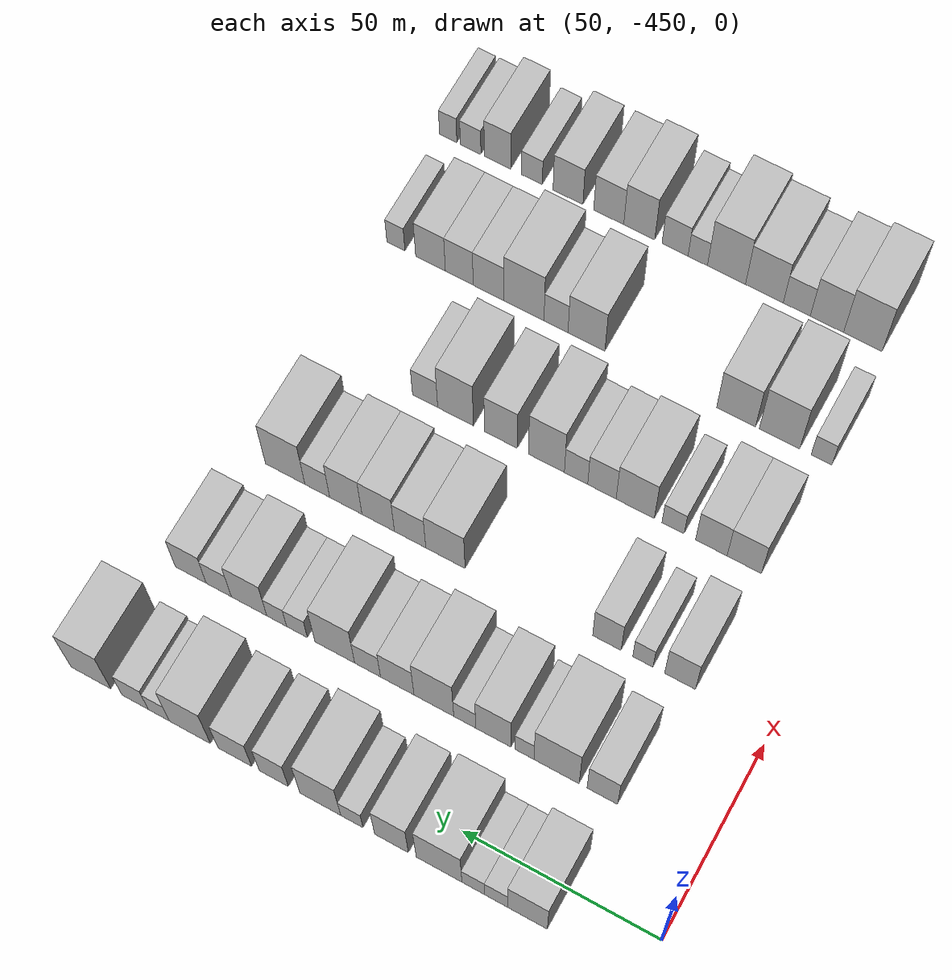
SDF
<sdf version="1.6">
 <world name="default">
  <model name="building_13">
   <static>1</static>
   <pose>50.0000 -421.9103 0 0.000000 0.000000 0.000000</pose>
   <link name="link">
    <pose>0 0 10.50 0 0 0</pose>
    <collision name="collision"><geometry><box><size>20.0000 9.9647 21.0000</size></box></geometry></collision>
    <visual name="visual">
     <cast_shadows>0</cast_shadows>
     <geometry><box><size>20.0000 9.9647 21.0000</size></box></geometry>
     <material>
      <script>
       <uri>model://HANNAS_wall/materials/scripts</uri>
       <uri>model://HANNAS_wall/materials/textures</uri>
       <name>vrc/HANNAS_wall</name>
      </script>
     </material>
    </visual>
   </link>
  </model>
  <model name="building_14">
   <static>1</static>
   <pose>50.0000 -414.0437 0 0.000000 0.000000 0.000000</pose>
   <link name="link">
    <pose>0 0 6.00 0 0 0</pose>
    <collision name="collision"><geometry><box><size>20.0000 5.7685 12.0000</size></box></geometry></collision>
    <visual name="visual">
     <cast_shadows>0</cast_shadows>
     <geometry><box><size>20.0000 5.7685 12.0000</size></box></geometry>
     <material>
      <script>
       <uri>model://HANNAS_wall/materials/scripts</uri>
       <uri>model://HANNAS_wall/materials/textures</uri>
       <name>vrc/HANNAS_wall</name>
      </script>
     </material>
    </visual>
   </link>
  </model>
  <model name="building_15">
   <static>1</static>
   <pose>50.0000 -408.3060 0 0.000000 0.000000 0.000000</pose>
   <link name="link">
    <pose>0 0 6.00 0 0 0</pose>
    <collision name="collision"><geometry><box><size>20.0000 5.7069 12.0000</size></box></geometry></collision>
    <visual name="visual">
     <cast_shadows>0</cast_shadows>
     <geometry><box><size>20.0000 5.7069 12.0000</size></box></geometry>
     <material>
      <script>
       <uri>model://HANNAS_wall/materials/scripts</uri>
       <uri>model://HANNAS_wall/materials/textures</uri>
       <name>vrc/HANNAS_wall</name>
      </script>
     </material>
    </visual>
   </link>
  </model>
  <model name="building_16">
   <static>1</static>
   <pose>50.0000 -399.6602 0 0.000000 0.000000 0.000000</pose>
   <link name="link">
    <pose>0 0 12.00 0 0 0</pose>
    <collision name="collision"><geometry><box><size>20.0000 11.5849 24.0000</size></box></geometry></collision>
    <visual name="visual">
     <cast_shadows>0</cast_shadows>
     <geometry><box><size>20.0000 11.5849 24.0000</size></box></geometry>
     <material>
      <script>
       <uri>model://HANNAS_wall/materials/scripts</uri>
       <uri>model://HANNAS_wall/materials/textures</uri>
       <name>vrc/HANNAS_wall</name>
      </script>
     </material>
    </visual>
   </link>
  </model>
  <model name="building_17">
   <static>1</static>
   <pose>50.0000 -387.5514 0 0.000000 0.000000 0.000000</pose>
   <link name="link">
    <pose>0 0 10.50 0 0 0</pose>
    <collision name="collision"><geometry><box><size>20.0000 8.6327 21.0000</size></box></geometry></collision>
    <visual name="visual">
     <cast_shadows>0</cast_shadows>
     <geometry><box><size>20.0000 8.6327 21.0000</size></box></geometry>
     <material>
      <script>
       <uri>model://HANNAS_wall/materials/scripts</uri>
       <uri>model://HANNAS_wall/materials/textures</uri>
       <name>vrc/HANNAS_wall</name>
      </script>
     </material>
    </visual>
   </link>
  </model>
  <model name="building_18">
   <static>1</static>
   <pose>50.0000 -377.3705 0 0.000000 0.000000 0.000000</pose>
   <link name="link">
    <pose>0 0 6.00 0 0 0</pose>
    <collision name="collision"><geometry><box><size>20.0000 5.7292 12.0000</size></box></geometry></collision>
    <visual name="visual">
     <cast_shadows>0</cast_shadows>
     <geometry><box><size>20.0000 5.7292 12.0000</size></box></geometry>
     <material>
      <script>
       <uri>model://HANNAS_wall/materials/scripts</uri>
       <uri>model://HANNAS_wall/materials/textures</uri>
       <name>vrc/HANNAS_wall</name>
      </script>
     </material>
    </visual>
   </link>
  </model>
  <model name="building_19">
   <static>1</static>
   <pose>50.0000 -369.2263 0 0.000000 0.000000 0.000000</pose>
   <link name="link">
    <pose>0 0 12.00 0 0 0</pose>
    <collision name="collision"><geometry><box><size>20.0000 10.5591 24.0000</size></box></geometry></collision>
    <visual name="visual">
     <cast_shadows>0</cast_shadows>
     <geometry><box><size>20.0000 10.5591 24.0000</size></box></geometry>
     <material>
      <script>
       <uri>model://HANNAS_wall/materials/scripts</uri>
       <uri>model://HANNAS_wall/materials/textures</uri>
       <name>vrc/HANNAS_wall</name>
      </script>
     </material>
    </visual>
   </link>
  </model>
  <model name="building_20">
   <static>1</static>
   <pose>50.0000 -357.1500 0 0.000000 0.000000 0.000000</pose>
   <link name="link">
    <pose>0 0 9.00 0 0 0</pose>
    <collision name="collision"><geometry><box><size>20.0000 7.5935 18.0000</size></box></geometry></collision>
    <visual name="visual">
     <cast_shadows>0</cast_shadows>
     <geometry><box><size>20.0000 7.5935 18.0000</size></box></geometry>
     <material>
      <script>
       <uri>model://HANNAS_wall/materials/scripts</uri>
       <uri>model://HANNAS_wall/materials/textures</uri>
       <name>vrc/HANNAS_wall</name>
      </script>
     </material>
    </visual>
   </link>
  </model>
  <model name="building_21">
   <static>1</static>
   <pose>50.0000 -346.9316 0 0.000000 0.000000 0.000000</pose>
   <link name="link">
    <pose>0 0 9.00 0 0 0</pose>
    <collision name="collision"><geometry><box><size>20.0000 8.8433 18.0000</size></box></geometry></collision>
    <visual name="visual">
     <cast_shadows>0</cast_shadows>
     <geometry><box><size>20.0000 8.8433 18.0000</size></box></geometry>
     <material>
      <script>
       <uri>model://HANNAS_wall/materials/scripts</uri>
       <uri>model://HANNAS_wall/materials/textures</uri>
       <name>vrc/HANNAS_wall</name>
      </script>
     </material>
    </visual>
   </link>
  </model>
  <model name="building_22">
   <static>1</static>
   <pose>50.0000 -335.1020 0 0.000000 0.000000 0.000000</pose>
   <link name="link">
    <pose>0 0 12.00 0 0 0</pose>
    <collision name="collision"><geometry><box><size>20.0000 10.8159 24.0000</size></box></geometry></collision>
    <visual name="visual">
     <cast_shadows>0</cast_shadows>
     <geometry><box><size>20.0000 10.8159 24.0000</size></box></geometry>
     <material>
      <script>
       <uri>model://HANNAS_wall/materials/scripts</uri>
       <uri>model://HANNAS_wall/materials/textures</uri>
       <name>vrc/HANNAS_wall</name>
      </script>
     </material>
    </visual>
   </link>
  </model>
  <model name="building_23">
   <static>1</static>
   <pose>50.0000 -326.8852 0 0.000000 0.000000 0.000000</pose>
   <link name="link">
    <pose>0 0 6.00 0 0 0</pose>
    <collision name="collision"><geometry><box><size>20.0000 5.6176 12.0000</size></box></geometry></collision>
    <visual name="visual">
     <cast_shadows>0</cast_shadows>
     <geometry><box><size>20.0000 5.6176 12.0000</size></box></geometry>
     <material>
      <script>
       <uri>model://HANNAS_wall/materials/scripts</uri>
       <uri>model://HANNAS_wall/materials/textures</uri>
       <name>vrc/HANNAS_wall</name>
      </script>
     </material>
    </visual>
   </link>
  </model>
  <model name="building_24">
   <static>1</static>
   <pose>50.0000 -320.5650 0 0.000000 0.000000 0.000000</pose>
   <link name="link">
    <pose>0 0 7.50 0 0 0</pose>
    <collision name="collision"><geometry><box><size>20.0000 7.0227 15.0000</size></box></geometry></collision>
    <visual name="visual">
     <cast_shadows>0</cast_shadows>
     <geometry><box><size>20.0000 7.0227 15.0000</size></box></geometry>
     <material>
      <script>
       <uri>model://HANNAS_wall/materials/scripts</uri>
       <uri>model://HANNAS_wall/materials/textures</uri>
       <name>vrc/HANNAS_wall</name>
      </script>
     </material>
    </visual>
   </link>
  </model>
  <model name="building_25">
   <static>1</static>
   <pose>50.0000 -308.7052 0 0.000000 0.000000 0.000000</pose>
   <link name="link">
    <pose>0 0 12.00 0 0 0</pose>
    <collision name="collision"><geometry><box><size>20.0000 10.6969 24.0000</size></box></geometry></collision>
    <visual name="visual">
     <cast_shadows>0</cast_shadows>
     <geometry><box><size>20.0000 10.6969 24.0000</size></box></geometry>
     <material>
      <script>
       <uri>model://HANNAS_wall/materials/scripts</uri>
       <uri>model://HANNAS_wall/materials/textures</uri>
       <name>vrc/HANNAS_wall</name>
      </script>
     </material>
    </visual>
   </link>
  </model>
  <model name="building_134">
   <static>1</static>
   <pose>82.0000 -423.4701 0 0.000000 0.000000 0.000000</pose>
   <link name="link">
    <pose>0 0 9.00 0 0 0</pose>
    <collision name="collision"><geometry><box><size>20.0000 7.7353 18.0000</size></box></geometry></collision>
    <visual name="visual">
     <cast_shadows>0</cast_shadows>
     <geometry><box><size>20.0000 7.7353 18.0000</size></box></geometry>
     <material>
      <script>
       <uri>model://HANNAS_wall/materials/scripts</uri>
       <uri>model://HANNAS_wall/materials/textures</uri>
       <name>vrc/HANNAS_wall</name>
      </script>
     </material>
    </visual>
   </link>
  </model>
  <model name="building_135">
   <static>1</static>
   <pose>82.0000 -411.8391 0 0.000000 0.000000 0.000000</pose>
   <link name="link">
    <pose>0 0 12.00 0 0 0</pose>
    <collision name="collision"><geometry><box><size>20.0000 11.5268 24.0000</size></box></geometry></collision>
    <visual name="visual">
     <cast_shadows>0</cast_shadows>
     <geometry><box><size>20.0000 11.5268 24.0000</size></box></geometry>
     <material>
      <script>
       <uri>model://HANNAS_wall/materials/scripts</uri>
       <uri>model://HANNAS_wall/materials/textures</uri>
       <name>vrc/HANNAS_wall</name>
      </script>
     </material>
    </visual>
   </link>
  </model>
  <model name="building_136">
   <static>1</static>
   <pose>82.0000 -403.6393 0 0.000000 0.000000 0.000000</pose>
   <link name="link">
    <pose>0 0 6.00 0 0 0</pose>
    <collision name="collision"><geometry><box><size>20.0000 4.8726 12.0000</size></box></geometry></collision>
    <visual name="visual">
     <cast_shadows>0</cast_shadows>
     <geometry><box><size>20.0000 4.8726 12.0000</size></box></geometry>
     <material>
      <script>
       <uri>model://HANNAS_wall/materials/scripts</uri>
       <uri>model://HANNAS_wall/materials/textures</uri>
       <name>vrc/HANNAS_wall</name>
      </script>
     </material>
    </visual>
   </link>
  </model>
  <model name="building_137">
   <static>1</static>
   <pose>82.0000 -395.6649 0 0.000000 0.000000 0.000000</pose>
   <link name="link">
    <pose>0 0 10.50 0 0 0</pose>
    <collision name="collision"><geometry><box><size>20.0000 9.0762 21.0000</size></box></geometry></collision>
    <visual name="visual">
     <cast_shadows>0</cast_shadows>
     <geometry><box><size>20.0000 9.0762 21.0000</size></box></geometry>
     <material>
      <script>
       <uri>model://HANNAS_wall/materials/scripts</uri>
       <uri>model://HANNAS_wall/materials/textures</uri>
       <name>vrc/HANNAS_wall</name>
      </script>
     </material>
    </visual>
   </link>
  </model>
  <model name="building_138">
   <static>1</static>
   <pose>82.0000 -388.2661 0 0.000000 0.000000 0.000000</pose>
   <link name="link">
    <pose>0 0 6.00 0 0 0</pose>
    <collision name="collision"><geometry><box><size>20.0000 5.7216 12.0000</size></box></geometry></collision>
    <visual name="visual">
     <cast_shadows>0</cast_shadows>
     <geometry><box><size>20.0000 5.7216 12.0000</size></box></geometry>
     <material>
      <script>
       <uri>model://HANNAS_wall/materials/scripts</uri>
       <uri>model://HANNAS_wall/materials/textures</uri>
       <name>vrc/HANNAS_wall</name>
      </script>
     </material>
    </visual>
   </link>
  </model>
  <model name="building_139">
   <static>1</static>
   <pose>82.0000 -380.2306 0 0.000000 0.000000 0.000000</pose>
   <link name="link">
    <pose>0 0 12.00 0 0 0</pose>
    <collision name="collision"><geometry><box><size>20.0000 10.3494 24.0000</size></box></geometry></collision>
    <visual name="visual">
     <cast_shadows>0</cast_shadows>
     <geometry><box><size>20.0000 10.3494 24.0000</size></box></geometry>
     <material>
      <script>
       <uri>model://HANNAS_wall/materials/scripts</uri>
       <uri>model://HANNAS_wall/materials/textures</uri>
       <name>vrc/HANNAS_wall</name>
      </script>
     </material>
    </visual>
   </link>
  </model>
  <model name="building_140">
   <static>1</static>
   <pose>82.0000 -370.6792 0 0.000000 0.000000 0.000000</pose>
   <link name="link">
    <pose>0 0 9.00 0 0 0</pose>
    <collision name="collision"><geometry><box><size>20.0000 8.7533 18.0000</size></box></geometry></collision>
    <visual name="visual">
     <cast_shadows>0</cast_shadows>
     <geometry><box><size>20.0000 8.7533 18.0000</size></box></geometry>
     <material>
      <script>
       <uri>model://HANNAS_wall/materials/scripts</uri>
       <uri>model://HANNAS_wall/materials/textures</uri>
       <name>vrc/HANNAS_wall</name>
      </script>
     </material>
    </visual>
   </link>
  </model>
  <model name="building_141">
   <static>1</static>
   <pose>82.0000 -362.8977 0 0.000000 0.000000 0.000000</pose>
   <link name="link">
    <pose>0 0 7.50 0 0 0</pose>
    <collision name="collision"><geometry><box><size>20.0000 6.8097 15.0000</size></box></geometry></collision>
    <visual name="visual">
     <cast_shadows>0</cast_shadows>
     <geometry><box><size>20.0000 6.8097 15.0000</size></box></geometry>
     <material>
      <script>
       <uri>model://HANNAS_wall/materials/scripts</uri>
       <uri>model://HANNAS_wall/materials/textures</uri>
       <name>vrc/HANNAS_wall</name>
      </script>
     </material>
    </visual>
   </link>
  </model>
  <model name="building_142">
   <static>1</static>
   <pose>82.0000 -354.2395 0 0.000000 0.000000 0.000000</pose>
   <link name="link">
    <pose>0 0 12.00 0 0 0</pose>
    <collision name="collision"><geometry><box><size>20.0000 10.5068 24.0000</size></box></geometry></collision>
    <visual name="visual">
     <cast_shadows>0</cast_shadows>
     <geometry><box><size>20.0000 10.5068 24.0000</size></box></geometry>
     <material>
      <script>
       <uri>model://HANNAS_wall/materials/scripts</uri>
       <uri>model://HANNAS_wall/materials/textures</uri>
       <name>vrc/HANNAS_wall</name>
      </script>
     </material>
    </visual>
   </link>
  </model>
  <model name="building_143">
   <static>1</static>
   <pose>82.0000 -344.2199 0 0.000000 0.000000 0.000000</pose>
   <link name="link">
    <pose>0 0 6.00 0 0 0</pose>
    <collision name="collision"><geometry><box><size>20.0000 5.5324 12.0000</size></box></geometry></collision>
    <visual name="visual">
     <cast_shadows>0</cast_shadows>
     <geometry><box><size>20.0000 5.5324 12.0000</size></box></geometry>
     <material>
      <script>
       <uri>model://HANNAS_wall/materials/scripts</uri>
       <uri>model://HANNAS_wall/materials/textures</uri>
       <name>vrc/HANNAS_wall</name>
      </script>
     </material>
    </visual>
   </link>
  </model>
  <model name="building_144">
   <static>1</static>
   <pose>82.0000 -338.8040 0 0.000000 0.000000 0.000000</pose>
   <link name="link">
    <pose>0 0 6.00 0 0 0</pose>
    <collision name="collision"><geometry><box><size>20.0000 5.2995 12.0000</size></box></geometry></collision>
    <visual name="visual">
     <cast_shadows>0</cast_shadows>
     <geometry><box><size>20.0000 5.2995 12.0000</size></box></geometry>
     <material>
      <script>
       <uri>model://HANNAS_wall/materials/scripts</uri>
       <uri>model://HANNAS_wall/materials/textures</uri>
       <name>vrc/HANNAS_wall</name>
      </script>
     </material>
    </visual>
   </link>
  </model>
  <model name="building_145">
   <static>1</static>
   <pose>82.0000 -331.4019 0 0.000000 0.000000 0.000000</pose>
   <link name="link">
    <pose>0 0 10.50 0 0 0</pose>
    <collision name="collision"><geometry><box><size>20.0000 9.5048 21.0000</size></box></geometry></collision>
    <visual name="visual">
     <cast_shadows>0</cast_shadows>
     <geometry><box><size>20.0000 9.5048 21.0000</size></box></geometry>
     <material>
      <script>
       <uri>model://HANNAS_wall/materials/scripts</uri>
       <uri>model://HANNAS_wall/materials/textures</uri>
       <name>vrc/HANNAS_wall</name>
      </script>
     </material>
    </visual>
   </link>
  </model>
  <model name="building_146">
   <static>1</static>
   <pose>82.0000 -323.2668 0 0.000000 0.000000 0.000000</pose>
   <link name="link">
    <pose>0 0 7.50 0 0 0</pose>
    <collision name="collision"><geometry><box><size>20.0000 6.7654 15.0000</size></box></geometry></collision>
    <visual name="visual">
     <cast_shadows>0</cast_shadows>
     <geometry><box><size>20.0000 6.7654 15.0000</size></box></geometry>
     <material>
      <script>
       <uri>model://HANNAS_wall/materials/scripts</uri>
       <uri>model://HANNAS_wall/materials/textures</uri>
       <name>vrc/HANNAS_wall</name>
      </script>
     </material>
    </visual>
   </link>
  </model>
  <model name="building_147">
   <static>1</static>
   <pose>82.0000 -315.7030 0 0.000000 0.000000 0.000000</pose>
   <link name="link">
    <pose>0 0 9.00 0 0 0</pose>
    <collision name="collision"><geometry><box><size>20.0000 8.3622 18.0000</size></box></geometry></collision>
    <visual name="visual">
     <cast_shadows>0</cast_shadows>
     <geometry><box><size>20.0000 8.3622 18.0000</size></box></geometry>
     <material>
      <script>
       <uri>model://HANNAS_wall/materials/scripts</uri>
       <uri>model://HANNAS_wall/materials/textures</uri>
       <name>vrc/HANNAS_wall</name>
      </script>
     </material>
    </visual>
   </link>
  </model>
  <model name="building_253">
   <static>1</static>
   <pose>114.0000 -426.4577 0 0.000000 0.000000 0.000000</pose>
   <link name="link">
    <pose>0 0 9.00 0 0 0</pose>
    <collision name="collision"><geometry><box><size>20.0000 7.8950 18.0000</size></box></geometry></collision>
    <visual name="visual">
     <cast_shadows>0</cast_shadows>
     <geometry><box><size>20.0000 7.8950 18.0000</size></box></geometry>
     <material>
      <script>
       <uri>model://HANNAS_wall/materials/scripts</uri>
       <uri>model://HANNAS_wall/materials/textures</uri>
       <name>vrc/HANNAS_wall</name>
      </script>
     </material>
    </visual>
   </link>
  </model>
  <model name="building_254">
   <static>1</static>
   <pose>114.0000 -416.8995 0 0.000000 0.000000 0.000000</pose>
   <link name="link">
    <pose>0 0 6.00 0 0 0</pose>
    <collision name="collision"><geometry><box><size>20.0000 5.2213 12.0000</size></box></geometry></collision>
    <visual name="visual">
     <cast_shadows>0</cast_shadows>
     <geometry><box><size>20.0000 5.2213 12.0000</size></box></geometry>
     <material>
      <script>
       <uri>model://HANNAS_wall/materials/scripts</uri>
       <uri>model://HANNAS_wall/materials/textures</uri>
       <name>vrc/HANNAS_wall</name>
      </script>
     </material>
    </visual>
   </link>
  </model>
  <model name="building_255">
   <static>1</static>
   <pose>114.0000 -407.6036 0 0.000000 0.000000 0.000000</pose>
   <link name="link">
    <pose>0 0 9.00 0 0 0</pose>
    <collision name="collision"><geometry><box><size>20.0000 7.3705 18.0000</size></box></geometry></collision>
    <visual name="visual">
     <cast_shadows>0</cast_shadows>
     <geometry><box><size>20.0000 7.3705 18.0000</size></box></geometry>
     <material>
      <script>
       <uri>model://HANNAS_wall/materials/scripts</uri>
       <uri>model://HANNAS_wall/materials/textures</uri>
       <name>vrc/HANNAS_wall</name>
      </script>
     </material>
    </visual>
   </link>
  </model>
  <model name="building_256">
   <static>1</static>
   <pose>114.0000 -365.2216 0 0.000000 0.000000 0.000000</pose>
   <link name="link">
    <pose>0 0 10.50 0 0 0</pose>
    <collision name="collision"><geometry><box><size>20.0000 10.4645 21.0000</size></box></geometry></collision>
    <visual name="visual">
     <cast_shadows>0</cast_shadows>
     <geometry><box><size>20.0000 10.4645 21.0000</size></box></geometry>
     <material>
      <script>
       <uri>model://HANNAS_wall/materials/scripts</uri>
       <uri>model://HANNAS_wall/materials/textures</uri>
       <name>vrc/HANNAS_wall</name>
      </script>
     </material>
    </visual>
   </link>
  </model>
  <model name="building_257">
   <static>1</static>
   <pose>114.0000 -355.7968 0 0.000000 0.000000 0.000000</pose>
   <link name="link">
    <pose>0 0 9.00 0 0 0</pose>
    <collision name="collision"><geometry><box><size>20.0000 8.3851 18.0000</size></box></geometry></collision>
    <visual name="visual">
     <cast_shadows>0</cast_shadows>
     <geometry><box><size>20.0000 8.3851 18.0000</size></box></geometry>
     <material>
      <script>
       <uri>model://HANNAS_wall/materials/scripts</uri>
       <uri>model://HANNAS_wall/materials/textures</uri>
       <name>vrc/HANNAS_wall</name>
      </script>
     </material>
    </visual>
   </link>
  </model>
  <model name="building_258">
   <static>1</static>
   <pose>114.0000 -347.2455 0 0.000000 0.000000 0.000000</pose>
   <link name="link">
    <pose>0 0 10.50 0 0 0</pose>
    <collision name="collision"><geometry><box><size>20.0000 8.7176 21.0000</size></box></geometry></collision>
    <visual name="visual">
     <cast_shadows>0</cast_shadows>
     <geometry><box><size>20.0000 8.7176 21.0000</size></box></geometry>
     <material>
      <script>
       <uri>model://HANNAS_wall/materials/scripts</uri>
       <uri>model://HANNAS_wall/materials/textures</uri>
       <name>vrc/HANNAS_wall</name>
      </script>
     </material>
    </visual>
   </link>
  </model>
  <model name="building_259">
   <static>1</static>
   <pose>114.0000 -338.5123 0 0.000000 0.000000 0.000000</pose>
   <link name="link">
    <pose>0 0 10.50 0 0 0</pose>
    <collision name="collision"><geometry><box><size>20.0000 8.7488 21.0000</size></box></geometry></collision>
    <visual name="visual">
     <cast_shadows>0</cast_shadows>
     <geometry><box><size>20.0000 8.7488 21.0000</size></box></geometry>
     <material>
      <script>
       <uri>model://HANNAS_wall/materials/scripts</uri>
       <uri>model://HANNAS_wall/materials/textures</uri>
       <name>vrc/HANNAS_wall</name>
      </script>
     </material>
    </visual>
   </link>
  </model>
  <model name="building_260">
   <static>1</static>
   <pose>114.0000 -330.7666 0 0.000000 0.000000 0.000000</pose>
   <link name="link">
    <pose>0 0 7.50 0 0 0</pose>
    <collision name="collision"><geometry><box><size>20.0000 6.7427 15.0000</size></box></geometry></collision>
    <visual name="visual">
     <cast_shadows>0</cast_shadows>
     <geometry><box><size>20.0000 6.7427 15.0000</size></box></geometry>
     <material>
      <script>
       <uri>model://HANNAS_wall/materials/scripts</uri>
       <uri>model://HANNAS_wall/materials/textures</uri>
       <name>vrc/HANNAS_wall</name>
      </script>
     </material>
    </visual>
   </link>
  </model>
  <model name="building_261">
   <static>1</static>
   <pose>114.0000 -322.0297 0 0.000000 0.000000 0.000000</pose>
   <link name="link">
    <pose>0 0 12.00 0 0 0</pose>
    <collision name="collision"><geometry><box><size>20.0000 10.7311 24.0000</size></box></geometry></collision>
    <visual name="visual">
     <cast_shadows>0</cast_shadows>
     <geometry><box><size>20.0000 10.7311 24.0000</size></box></geometry>
     <material>
      <script>
       <uri>model://HANNAS_wall/materials/scripts</uri>
       <uri>model://HANNAS_wall/materials/textures</uri>
       <name>vrc/HANNAS_wall</name>
      </script>
     </material>
    </visual>
   </link>
  </model>
  <model name="building_372">
   <static>1</static>
   <pose>146.0000 -426.5853 0 0.000000 0.000000 0.000000</pose>
   <link name="link">
    <pose>0 0 9.00 0 0 0</pose>
    <collision name="collision"><geometry><box><size>20.0000 8.9103 18.0000</size></box></geometry></collision>
    <visual name="visual">
     <cast_shadows>0</cast_shadows>
     <geometry><box><size>20.0000 8.9103 18.0000</size></box></geometry>
     <material>
      <script>
       <uri>model://HANNAS_wall/materials/scripts</uri>
       <uri>model://HANNAS_wall/materials/textures</uri>
       <name>vrc/HANNAS_wall</name>
      </script>
     </material>
    </visual>
   </link>
  </model>
  <model name="building_373">
   <static>1</static>
   <pose>146.0000 -418.0212 0 0.000000 0.000000 0.000000</pose>
   <link name="link">
    <pose>0 0 9.00 0 0 0</pose>
    <collision name="collision"><geometry><box><size>20.0000 8.2180 18.0000</size></box></geometry></collision>
    <visual name="visual">
     <cast_shadows>0</cast_shadows>
     <geometry><box><size>20.0000 8.2180 18.0000</size></box></geometry>
     <material>
      <script>
       <uri>model://HANNAS_wall/materials/scripts</uri>
       <uri>model://HANNAS_wall/materials/textures</uri>
       <name>vrc/HANNAS_wall</name>
      </script>
     </material>
    </visual>
   </link>
  </model>
  <model name="building_374">
   <static>1</static>
   <pose>146.0000 -408.0068 0 0.000000 0.000000 0.000000</pose>
   <link name="link">
    <pose>0 0 6.00 0 0 0</pose>
    <collision name="collision"><geometry><box><size>20.0000 5.8109 12.0000</size></box></geometry></collision>
    <visual name="visual">
     <cast_shadows>0</cast_shadows>
     <geometry><box><size>20.0000 5.8109 12.0000</size></box></geometry>
     <material>
      <script>
       <uri>model://HANNAS_wall/materials/scripts</uri>
       <uri>model://HANNAS_wall/materials/textures</uri>
       <name>vrc/HANNAS_wall</name>
      </script>
     </material>
    </visual>
   </link>
  </model>
  <model name="building_375">
   <static>1</static>
   <pose>146.0000 -398.0621 0 0.000000 0.000000 0.000000</pose>
   <link name="link">
    <pose>0 0 10.50 0 0 0</pose>
    <collision name="collision"><geometry><box><size>20.0000 10.0785 21.0000</size></box></geometry></collision>
    <visual name="visual">
     <cast_shadows>0</cast_shadows>
     <geometry><box><size>20.0000 10.0785 21.0000</size></box></geometry>
     <material>
      <script>
       <uri>model://HANNAS_wall/materials/scripts</uri>
       <uri>model://HANNAS_wall/materials/textures</uri>
       <name>vrc/HANNAS_wall</name>
      </script>
     </material>
    </visual>
   </link>
  </model>
  <model name="building_376">
   <static>1</static>
   <pose>146.0000 -389.2462 0 0.000000 0.000000 0.000000</pose>
   <link name="link">
    <pose>0 0 9.00 0 0 0</pose>
    <collision name="collision"><geometry><box><size>20.0000 7.5531 18.0000</size></box></geometry></collision>
    <visual name="visual">
     <cast_shadows>0</cast_shadows>
     <geometry><box><size>20.0000 7.5531 18.0000</size></box></geometry>
     <material>
      <script>
       <uri>model://HANNAS_wall/materials/scripts</uri>
       <uri>model://HANNAS_wall/materials/textures</uri>
       <name>vrc/HANNAS_wall</name>
      </script>
     </material>
    </visual>
   </link>
  </model>
  <model name="building_377">
   <static>1</static>
   <pose>146.0000 -382.3664 0 0.000000 0.000000 0.000000</pose>
   <link name="link">
    <pose>0 0 7.50 0 0 0</pose>
    <collision name="collision"><geometry><box><size>20.0000 6.2066 15.0000</size></box></geometry></collision>
    <visual name="visual">
     <cast_shadows>0</cast_shadows>
     <geometry><box><size>20.0000 6.2066 15.0000</size></box></geometry>
     <material>
      <script>
       <uri>model://HANNAS_wall/materials/scripts</uri>
       <uri>model://HANNAS_wall/materials/textures</uri>
       <name>vrc/HANNAS_wall</name>
      </script>
     </material>
    </visual>
   </link>
  </model>
  <model name="building_378">
   <static>1</static>
   <pose>146.0000 -374.4579 0 0.000000 0.000000 0.000000</pose>
   <link name="link">
    <pose>0 0 12.00 0 0 0</pose>
    <collision name="collision"><geometry><box><size>20.0000 9.6102 24.0000</size></box></geometry></collision>
    <visual name="visual">
     <cast_shadows>0</cast_shadows>
     <geometry><box><size>20.0000 9.6102 24.0000</size></box></geometry>
     <material>
      <script>
       <uri>model://HANNAS_wall/materials/scripts</uri>
       <uri>model://HANNAS_wall/materials/textures</uri>
       <name>vrc/HANNAS_wall</name>
      </script>
     </material>
    </visual>
   </link>
  </model>
  <model name="building_379">
   <static>1</static>
   <pose>146.0000 -362.2398 0 0.000000 0.000000 0.000000</pose>
   <link name="link">
    <pose>0 0 10.50 0 0 0</pose>
    <collision name="collision"><geometry><box><size>20.0000 8.8261 21.0000</size></box></geometry></collision>
    <visual name="visual">
     <cast_shadows>0</cast_shadows>
     <geometry><box><size>20.0000 8.8261 21.0000</size></box></geometry>
     <material>
      <script>
       <uri>model://HANNAS_wall/materials/scripts</uri>
       <uri>model://HANNAS_wall/materials/textures</uri>
       <name>vrc/HANNAS_wall</name>
      </script>
     </material>
    </visual>
   </link>
  </model>
  <model name="building_380">
   <static>1</static>
   <pose>146.0000 -349.9590 0 0.000000 0.000000 0.000000</pose>
   <link name="link">
    <pose>0 0 12.00 0 0 0</pose>
    <collision name="collision"><geometry><box><size>20.0000 9.7353 24.0000</size></box></geometry></collision>
    <visual name="visual">
     <cast_shadows>0</cast_shadows>
     <geometry><box><size>20.0000 9.7353 24.0000</size></box></geometry>
     <material>
      <script>
       <uri>model://HANNAS_wall/materials/scripts</uri>
       <uri>model://HANNAS_wall/materials/textures</uri>
       <name>vrc/HANNAS_wall</name>
      </script>
     </material>
    </visual>
   </link>
  </model>
  <model name="building_381">
   <static>1</static>
   <pose>146.0000 -341.6564 0 0.000000 0.000000 0.000000</pose>
   <link name="link">
    <pose>0 0 7.50 0 0 0</pose>
    <collision name="collision"><geometry><box><size>20.0000 6.8701 15.0000</size></box></geometry></collision>
    <visual name="visual">
     <cast_shadows>0</cast_shadows>
     <geometry><box><size>20.0000 6.8701 15.0000</size></box></geometry>
     <material>
      <script>
       <uri>model://HANNAS_wall/materials/scripts</uri>
       <uri>model://HANNAS_wall/materials/textures</uri>
       <name>vrc/HANNAS_wall</name>
      </script>
     </material>
    </visual>
   </link>
  </model>
  <model name="building_476">
   <static>1</static>
   <pose>178.0000 -430.7596 0 0.000000 0.000000 0.000000</pose>
   <link name="link">
    <pose>0 0 6.00 0 0 0</pose>
    <collision name="collision"><geometry><box><size>20.0000 5.4465 12.0000</size></box></geometry></collision>
    <visual name="visual">
     <cast_shadows>0</cast_shadows>
     <geometry><box><size>20.0000 5.4465 12.0000</size></box></geometry>
     <material>
      <script>
       <uri>model://HANNAS_wall/materials/scripts</uri>
       <uri>model://HANNAS_wall/materials/textures</uri>
       <name>vrc/HANNAS_wall</name>
      </script>
     </material>
    </visual>
   </link>
  </model>
  <model name="building_477">
   <static>1</static>
   <pose>178.0000 -419.7015 0 0.000000 0.000000 0.000000</pose>
   <link name="link">
    <pose>0 0 12.00 0 0 0</pose>
    <collision name="collision"><geometry><box><size>20.0000 10.6696 24.0000</size></box></geometry></collision>
    <visual name="visual">
     <cast_shadows>0</cast_shadows>
     <geometry><box><size>20.0000 10.6696 24.0000</size></box></geometry>
     <material>
      <script>
       <uri>model://HANNAS_wall/materials/scripts</uri>
       <uri>model://HANNAS_wall/materials/textures</uri>
       <name>vrc/HANNAS_wall</name>
      </script>
     </material>
    </visual>
   </link>
  </model>
  <model name="building_478">
   <static>1</static>
   <pose>178.0000 -408.2089 0 0.000000 0.000000 0.000000</pose>
   <link name="link">
    <pose>0 0 10.50 0 0 0</pose>
    <collision name="collision"><geometry><box><size>20.0000 10.3158 21.0000</size></box></geometry></collision>
    <visual name="visual">
     <cast_shadows>0</cast_shadows>
     <geometry><box><size>20.0000 10.3158 21.0000</size></box></geometry>
     <material>
      <script>
       <uri>model://HANNAS_wall/materials/scripts</uri>
       <uri>model://HANNAS_wall/materials/textures</uri>
       <name>vrc/HANNAS_wall</name>
      </script>
     </material>
    </visual>
   </link>
  </model>
  <model name="building_479">
   <static>1</static>
   <pose>178.0000 -367.9689 0 0.000000 0.000000 0.000000</pose>
   <link name="link">
    <pose>0 0 10.50 0 0 0</pose>
    <collision name="collision"><geometry><box><size>20.0000 10.0547 21.0000</size></box></geometry></collision>
    <visual name="visual">
     <cast_shadows>0</cast_shadows>
     <geometry><box><size>20.0000 10.0547 21.0000</size></box></geometry>
     <material>
      <script>
       <uri>model://HANNAS_wall/materials/scripts</uri>
       <uri>model://HANNAS_wall/materials/textures</uri>
       <name>vrc/HANNAS_wall</name>
      </script>
     </material>
    </visual>
   </link>
  </model>
  <model name="building_480">
   <static>1</static>
   <pose>178.0000 -359.6555 0 0.000000 0.000000 0.000000</pose>
   <link name="link">
    <pose>0 0 7.50 0 0 0</pose>
    <collision name="collision"><geometry><box><size>20.0000 6.5720 15.0000</size></box></geometry></collision>
    <visual name="visual">
     <cast_shadows>0</cast_shadows>
     <geometry><box><size>20.0000 6.5720 15.0000</size></box></geometry>
     <material>
      <script>
       <uri>model://HANNAS_wall/materials/scripts</uri>
       <uri>model://HANNAS_wall/materials/textures</uri>
       <name>vrc/HANNAS_wall</name>
      </script>
     </material>
    </visual>
   </link>
  </model>
  <model name="building_481">
   <static>1</static>
   <pose>178.0000 -350.8565 0 0.000000 0.000000 0.000000</pose>
   <link name="link">
    <pose>0 0 12.00 0 0 0</pose>
    <collision name="collision"><geometry><box><size>20.0000 11.0261 24.0000</size></box></geometry></collision>
    <visual name="visual">
     <cast_shadows>0</cast_shadows>
     <geometry><box><size>20.0000 11.0261 24.0000</size></box></geometry>
     <material>
      <script>
       <uri>model://HANNAS_wall/materials/scripts</uri>
       <uri>model://HANNAS_wall/materials/textures</uri>
       <name>vrc/HANNAS_wall</name>
      </script>
     </material>
    </visual>
   </link>
  </model>
  <model name="building_482">
   <static>1</static>
   <pose>178.0000 -341.1209 0 0.000000 0.000000 0.000000</pose>
   <link name="link">
    <pose>0 0 9.00 0 0 0</pose>
    <collision name="collision"><geometry><box><size>20.0000 8.4450 18.0000</size></box></geometry></collision>
    <visual name="visual">
     <cast_shadows>0</cast_shadows>
     <geometry><box><size>20.0000 8.4450 18.0000</size></box></geometry>
     <material>
      <script>
       <uri>model://HANNAS_wall/materials/scripts</uri>
       <uri>model://HANNAS_wall/materials/textures</uri>
       <name>vrc/HANNAS_wall</name>
      </script>
     </material>
    </visual>
   </link>
  </model>
  <model name="building_483">
   <static>1</static>
   <pose>178.0000 -333.0316 0 0.000000 0.000000 0.000000</pose>
   <link name="link">
    <pose>0 0 9.00 0 0 0</pose>
    <collision name="collision"><geometry><box><size>20.0000 7.7336 18.0000</size></box></geometry></collision>
    <visual name="visual">
     <cast_shadows>0</cast_shadows>
     <geometry><box><size>20.0000 7.7336 18.0000</size></box></geometry>
     <material>
      <script>
       <uri>model://HANNAS_wall/materials/scripts</uri>
       <uri>model://HANNAS_wall/materials/textures</uri>
       <name>vrc/HANNAS_wall</name>
      </script>
     </material>
    </visual>
   </link>
  </model>
  <model name="building_484">
   <static>1</static>
   <pose>178.0000 -325.0261 0 0.000000 0.000000 0.000000</pose>
   <link name="link">
    <pose>0 0 9.00 0 0 0</pose>
    <collision name="collision"><geometry><box><size>20.0000 8.2773 18.0000</size></box></geometry></collision>
    <visual name="visual">
     <cast_shadows>0</cast_shadows>
     <geometry><box><size>20.0000 8.2773 18.0000</size></box></geometry>
     <material>
      <script>
       <uri>model://HANNAS_wall/materials/scripts</uri>
       <uri>model://HANNAS_wall/materials/textures</uri>
       <name>vrc/HANNAS_wall</name>
      </script>
     </material>
    </visual>
   </link>
  </model>
  <model name="building_485">
   <static>1</static>
   <pose>178.0000 -315.3536 0 0.000000 0.000000 0.000000</pose>
   <link name="link">
    <pose>0 0 6.00 0 0 0</pose>
    <collision name="collision"><geometry><box><size>20.0000 5.0678 12.0000</size></box></geometry></collision>
    <visual name="visual">
     <cast_shadows>0</cast_shadows>
     <geometry><box><size>20.0000 5.0678 12.0000</size></box></geometry>
     <material>
      <script>
       <uri>model://HANNAS_wall/materials/scripts</uri>
       <uri>model://HANNAS_wall/materials/textures</uri>
       <name>vrc/HANNAS_wall</name>
      </script>
     </material>
    </visual>
   </link>
  </model>
  <model name="building_600">
   <static>1</static>
   <pose>210.0000 -426.0330 0 0.000000 0.000000 0.000000</pose>
   <link name="link">
    <pose>0 0 12.00 0 0 0</pose>
    <collision name="collision"><geometry><box><size>20.0000 10.2840 24.0000</size></box></geometry></collision>
    <visual name="visual">
     <cast_shadows>0</cast_shadows>
     <geometry><box><size>20.0000 10.2840 24.0000</size></box></geometry>
     <material>
      <script>
       <uri>model://HANNAS_wall/materials/scripts</uri>
       <uri>model://HANNAS_wall/materials/textures</uri>
       <name>vrc/HANNAS_wall</name>
      </script>
     </material>
    </visual>
   </link>
  </model>
  <model name="building_601">
   <static>1</static>
   <pose>210.0000 -416.4403 0 0.000000 0.000000 0.000000</pose>
   <link name="link">
    <pose>0 0 10.50 0 0 0</pose>
    <collision name="collision"><geometry><box><size>20.0000 8.9014 21.0000</size></box></geometry></collision>
    <visual name="visual">
     <cast_shadows>0</cast_shadows>
     <geometry><box><size>20.0000 8.9014 21.0000</size></box></geometry>
     <material>
      <script>
       <uri>model://HANNAS_wall/materials/scripts</uri>
       <uri>model://HANNAS_wall/materials/textures</uri>
       <name>vrc/HANNAS_wall</name>
      </script>
     </material>
    </visual>
   </link>
  </model>
  <model name="building_602">
   <static>1</static>
   <pose>210.0000 -408.3571 0 0.000000 0.000000 0.000000</pose>
   <link name="link">
    <pose>0 0 7.50 0 0 0</pose>
    <collision name="collision"><geometry><box><size>20.0000 7.2650 15.0000</size></box></geometry></collision>
    <visual name="visual">
     <cast_shadows>0</cast_shadows>
     <geometry><box><size>20.0000 7.2650 15.0000</size></box></geometry>
     <material>
      <script>
       <uri>model://HANNAS_wall/materials/scripts</uri>
       <uri>model://HANNAS_wall/materials/textures</uri>
       <name>vrc/HANNAS_wall</name>
      </script>
     </material>
    </visual>
   </link>
  </model>
  <model name="building_603">
   <static>1</static>
   <pose>210.0000 -399.6164 0 0.000000 0.000000 0.000000</pose>
   <link name="link">
    <pose>0 0 10.50 0 0 0</pose>
    <collision name="collision"><geometry><box><size>20.0000 10.2164 21.0000</size></box></geometry></collision>
    <visual name="visual">
     <cast_shadows>0</cast_shadows>
     <geometry><box><size>20.0000 10.2164 21.0000</size></box></geometry>
     <material>
      <script>
       <uri>model://HANNAS_wall/materials/scripts</uri>
       <uri>model://HANNAS_wall/materials/textures</uri>
       <name>vrc/HANNAS_wall</name>
      </script>
     </material>
    </visual>
   </link>
  </model>
  <model name="building_604">
   <static>1</static>
   <pose>210.0000 -389.3265 0 0.000000 0.000000 0.000000</pose>
   <link name="link">
    <pose>0 0 12.00 0 0 0</pose>
    <collision name="collision"><geometry><box><size>20.0000 10.3633 24.0000</size></box></geometry></collision>
    <visual name="visual">
     <cast_shadows>0</cast_shadows>
     <geometry><box><size>20.0000 10.3633 24.0000</size></box></geometry>
     <material>
      <script>
       <uri>model://HANNAS_wall/materials/scripts</uri>
       <uri>model://HANNAS_wall/materials/textures</uri>
       <name>vrc/HANNAS_wall</name>
      </script>
     </material>
    </visual>
   </link>
  </model>
  <model name="building_605">
   <static>1</static>
   <pose>210.0000 -381.4972 0 0.000000 0.000000 0.000000</pose>
   <link name="link">
    <pose>0 0 6.00 0 0 0</pose>
    <collision name="collision"><geometry><box><size>20.0000 5.2953 12.0000</size></box></geometry></collision>
    <visual name="visual">
     <cast_shadows>0</cast_shadows>
     <geometry><box><size>20.0000 5.2953 12.0000</size></box></geometry>
     <material>
      <script>
       <uri>model://HANNAS_wall/materials/scripts</uri>
       <uri>model://HANNAS_wall/materials/textures</uri>
       <name>vrc/HANNAS_wall</name>
      </script>
     </material>
    </visual>
   </link>
  </model>
  <model name="building_606">
   <static>1</static>
   <pose>210.0000 -375.2819 0 0.000000 0.000000 0.000000</pose>
   <link name="link">
    <pose>0 0 7.50 0 0 0</pose>
    <collision name="collision"><geometry><box><size>20.0000 7.1352 15.0000</size></box></geometry></collision>
    <visual name="visual">
     <cast_shadows>0</cast_shadows>
     <geometry><box><size>20.0000 7.1352 15.0000</size></box></geometry>
     <material>
      <script>
       <uri>model://HANNAS_wall/materials/scripts</uri>
       <uri>model://HANNAS_wall/materials/textures</uri>
       <name>vrc/HANNAS_wall</name>
      </script>
     </material>
    </visual>
   </link>
  </model>
  <model name="building_607">
   <static>1</static>
   <pose>210.0000 -365.4354 0 0.000000 0.000000 0.000000</pose>
   <link name="link">
    <pose>0 0 10.50 0 0 0</pose>
    <collision name="collision"><geometry><box><size>20.0000 8.5579 21.0000</size></box></geometry></collision>
    <visual name="visual">
     <cast_shadows>0</cast_shadows>
     <geometry><box><size>20.0000 8.5579 21.0000</size></box></geometry>
     <material>
      <script>
       <uri>model://HANNAS_wall/materials/scripts</uri>
       <uri>model://HANNAS_wall/materials/textures</uri>
       <name>vrc/HANNAS_wall</name>
      </script>
     </material>
    </visual>
   </link>
  </model>
  <model name="building_608">
   <static>1</static>
   <pose>210.0000 -357.0003 0 0.000000 0.000000 0.000000</pose>
   <link name="link">
    <pose>0 0 9.00 0 0 0</pose>
    <collision name="collision"><geometry><box><size>20.0000 8.3123 18.0000</size></box></geometry></collision>
    <visual name="visual">
     <cast_shadows>0</cast_shadows>
     <geometry><box><size>20.0000 8.3123 18.0000</size></box></geometry>
     <material>
      <script>
       <uri>model://HANNAS_wall/materials/scripts</uri>
       <uri>model://HANNAS_wall/materials/textures</uri>
       <name>vrc/HANNAS_wall</name>
      </script>
     </material>
    </visual>
   </link>
  </model>
  <model name="building_609">
   <static>1</static>
   <pose>210.0000 -345.6729 0 0.000000 0.000000 0.000000</pose>
   <link name="link">
    <pose>0 0 9.00 0 0 0</pose>
    <collision name="collision"><geometry><box><size>20.0000 8.3424 18.0000</size></box></geometry></collision>
    <visual name="visual">
     <cast_shadows>0</cast_shadows>
     <geometry><box><size>20.0000 8.3424 18.0000</size></box></geometry>
     <material>
      <script>
       <uri>model://HANNAS_wall/materials/scripts</uri>
       <uri>model://HANNAS_wall/materials/textures</uri>
       <name>vrc/HANNAS_wall</name>
      </script>
     </material>
    </visual>
   </link>
  </model>
  <model name="building_610">
   <static>1</static>
   <pose>210.0000 -335.5658 0 0.000000 0.000000 0.000000</pose>
   <link name="link">
    <pose>0 0 6.00 0 0 0</pose>
    <collision name="collision"><geometry><box><size>20.0000 5.8718 12.0000</size></box></geometry></collision>
    <visual name="visual">
     <cast_shadows>0</cast_shadows>
     <geometry><box><size>20.0000 5.8718 12.0000</size></box></geometry>
     <material>
      <script>
       <uri>model://HANNAS_wall/materials/scripts</uri>
       <uri>model://HANNAS_wall/materials/textures</uri>
       <name>vrc/HANNAS_wall</name>
      </script>
     </material>
    </visual>
   </link>
  </model>
  <model name="building_611">
   <static>1</static>
   <pose>210.0000 -325.9304 0 0.000000 0.000000 0.000000</pose>
   <link name="link">
    <pose>0 0 9.00 0 0 0</pose>
    <collision name="collision"><geometry><box><size>20.0000 7.3989 18.0000</size></box></geometry></collision>
    <visual name="visual">
     <cast_shadows>0</cast_shadows>
     <geometry><box><size>20.0000 7.3989 18.0000</size></box></geometry>
     <material>
      <script>
       <uri>model://HANNAS_wall/materials/scripts</uri>
       <uri>model://HANNAS_wall/materials/textures</uri>
       <name>vrc/HANNAS_wall</name>
      </script>
     </material>
    </visual>
   </link>
  </model>
  <model name="building_612">
   <static>1</static>
   <pose>210.0000 -318.3228 0 0.000000 0.000000 0.000000</pose>
   <link name="link">
    <pose>0 0 6.00 0 0 0</pose>
    <collision name="collision"><geometry><box><size>20.0000 5.8164 12.0000</size></box></geometry></collision>
    <visual name="visual">
     <cast_shadows>0</cast_shadows>
     <geometry><box><size>20.0000 5.8164 12.0000</size></box></geometry>
     <material>
      <script>
       <uri>model://HANNAS_wall/materials/scripts</uri>
       <uri>model://HANNAS_wall/materials/textures</uri>
       <name>vrc/HANNAS_wall</name>
      </script>
     </material>
    </visual>
   </link>
  </model>
  <model name="building_613">
   <static>1</static>
   <pose>210.0000 -311.9514 0 0.000000 0.000000 0.000000</pose>
   <link name="link">
    <pose>0 0 6.00 0 0 0</pose>
    <collision name="collision"><geometry><box><size>20.0000 4.9264 12.0000</size></box></geometry></collision>
    <visual name="visual">
     <cast_shadows>0</cast_shadows>
     <geometry><box><size>20.0000 4.9264 12.0000</size></box></geometry>
     <material>
      <script>
       <uri>model://HANNAS_wall/materials/scripts</uri>
       <uri>model://HANNAS_wall/materials/textures</uri>
       <name>vrc/HANNAS_wall</name>
      </script>
     </material>
    </visual>
   </link>
  </model>
 </world>
</sdf>
